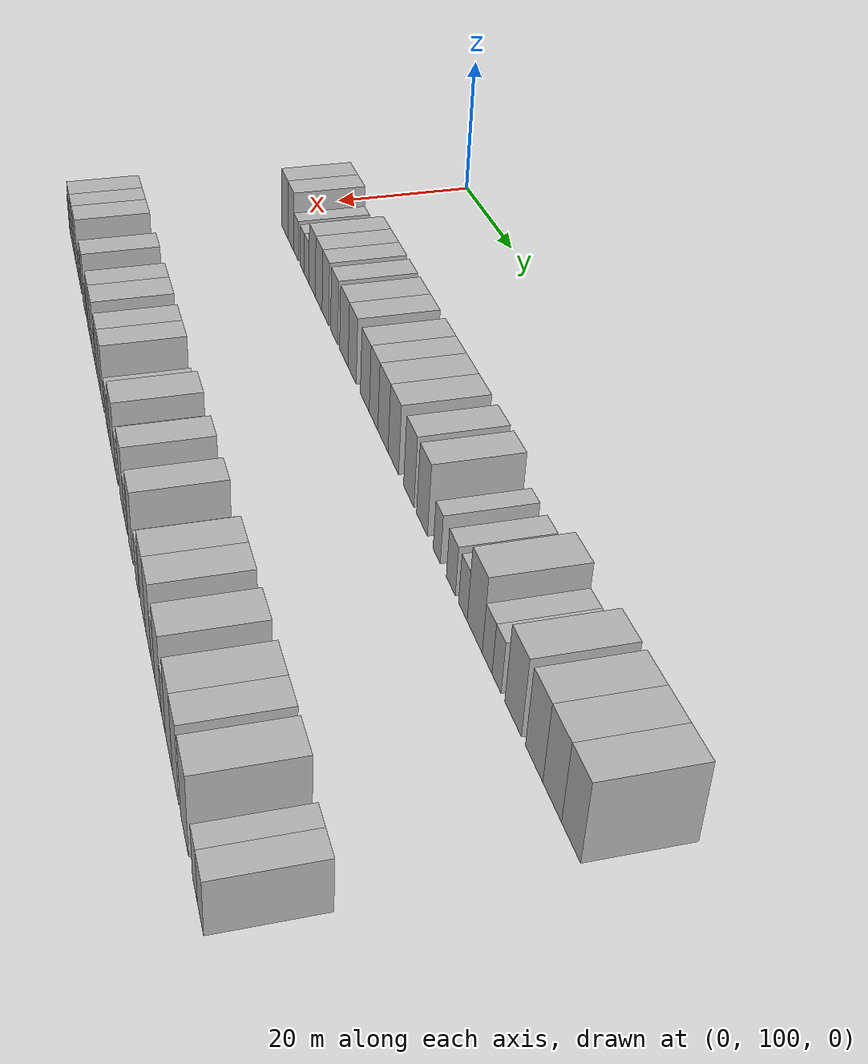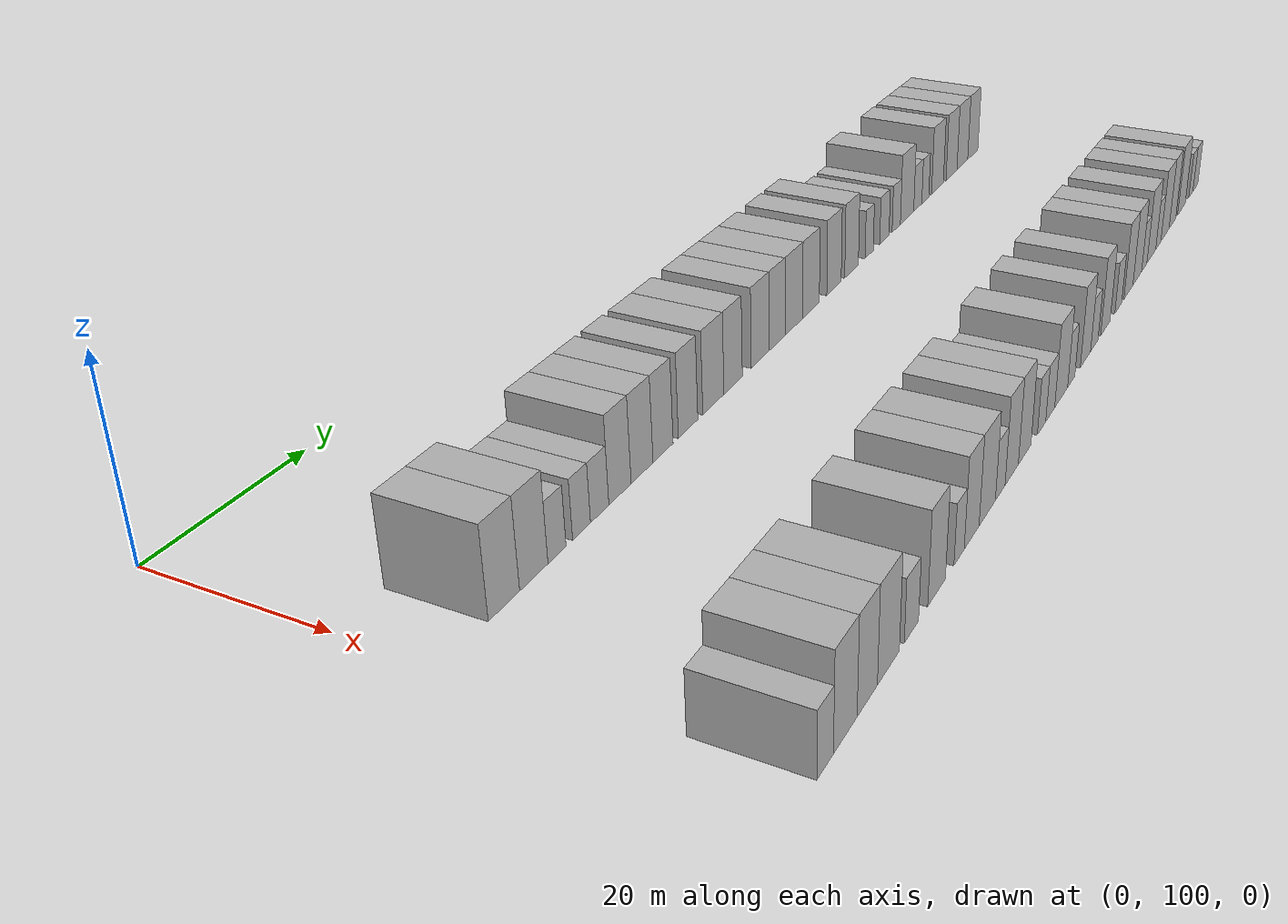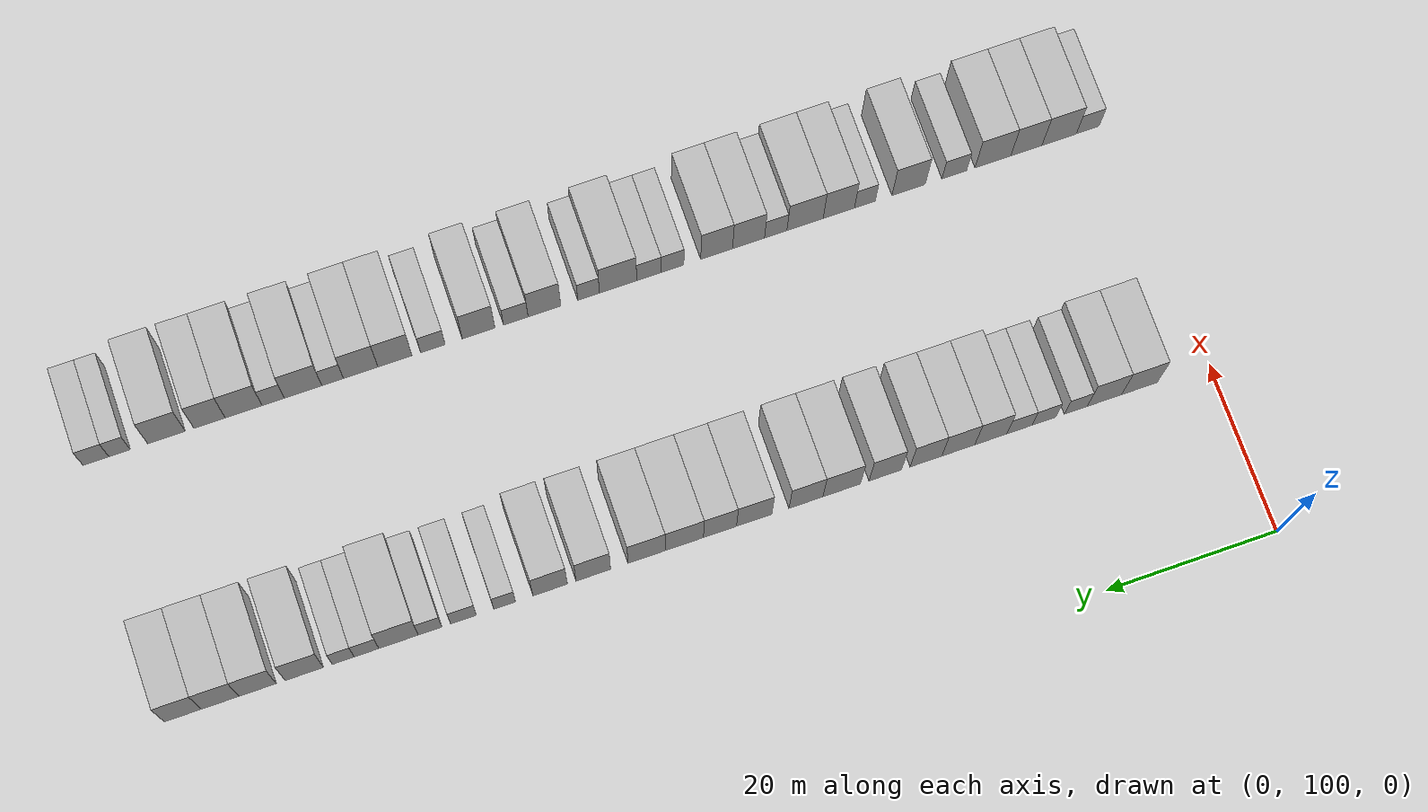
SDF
<sdf version="1.6">
 <world name="default">
  <model name="building_89">
   <static>1</static>
   <pose>25.0000 108.3610 0 0.000000 0.000000 0.000000</pose>
   <link name="link">
    <pose>0 0 4.50 0 0 0</pose>
    <collision name="collision"><geometry><box><size>10.0000 4.2693 9.0000</size></box></geometry></collision>
    <visual name="visual">
     <cast_shadows>0</cast_shadows>
     <geometry><box><size>10.0000 4.2693 9.0000</size></box></geometry>
     <material>
      <script>
       <uri>model://HANNAS_wall/materials/scripts</uri>
       <uri>model://HANNAS_wall/materials/textures</uri>
       <name>vrc/HANNAS_wall</name>
      </script>
     </material>
    </visual>
   </link>
  </model>
  <model name="building_90">
   <static>1</static>
   <pose>25.0000 112.5277 0 0.000000 0.000000 0.000000</pose>
   <link name="link">
    <pose>0 0 4.50 0 0 0</pose>
    <collision name="collision"><geometry><box><size>10.0000 4.0642 9.0000</size></box></geometry></collision>
    <visual name="visual">
     <cast_shadows>0</cast_shadows>
     <geometry><box><size>10.0000 4.0642 9.0000</size></box></geometry>
     <material>
      <script>
       <uri>model://HANNAS_wall/materials/scripts</uri>
       <uri>model://HANNAS_wall/materials/textures</uri>
       <name>vrc/HANNAS_wall</name>
      </script>
     </material>
    </visual>
   </link>
  </model>
  <model name="building_91">
   <static>1</static>
   <pose>25.0000 115.9121 0 0.000000 0.000000 0.000000</pose>
   <link name="link">
    <pose>0 0 3.00 0 0 0</pose>
    <collision name="collision"><geometry><box><size>10.0000 2.7045 6.0000</size></box></geometry></collision>
    <visual name="visual">
     <cast_shadows>0</cast_shadows>
     <geometry><box><size>10.0000 2.7045 6.0000</size></box></geometry>
     <material>
      <script>
       <uri>model://HANNAS_wall/materials/scripts</uri>
       <uri>model://HANNAS_wall/materials/textures</uri>
       <name>vrc/HANNAS_wall</name>
      </script>
     </material>
    </visual>
   </link>
  </model>
  <model name="building_92">
   <static>1</static>
   <pose>25.0000 119.6668 0 0.000000 0.000000 0.000000</pose>
   <link name="link">
    <pose>0 0 3.00 0 0 0</pose>
    <collision name="collision"><geometry><box><size>10.0000 2.8049 6.0000</size></box></geometry></collision>
    <visual name="visual">
     <cast_shadows>0</cast_shadows>
     <geometry><box><size>10.0000 2.8049 6.0000</size></box></geometry>
     <material>
      <script>
       <uri>model://HANNAS_wall/materials/scripts</uri>
       <uri>model://HANNAS_wall/materials/textures</uri>
       <name>vrc/HANNAS_wall</name>
      </script>
     </material>
    </visual>
   </link>
  </model>
  <model name="building_93">
   <static>1</static>
   <pose>25.0000 122.5591 0 0.000000 0.000000 0.000000</pose>
   <link name="link">
    <pose>0 0 3.00 0 0 0</pose>
    <collision name="collision"><geometry><box><size>10.0000 2.9797 6.0000</size></box></geometry></collision>
    <visual name="visual">
     <cast_shadows>0</cast_shadows>
     <geometry><box><size>10.0000 2.9797 6.0000</size></box></geometry>
     <material>
      <script>
       <uri>model://HANNAS_wall/materials/scripts</uri>
       <uri>model://HANNAS_wall/materials/textures</uri>
       <name>vrc/HANNAS_wall</name>
      </script>
     </material>
    </visual>
   </link>
  </model>
  <model name="building_94">
   <static>1</static>
   <pose>25.0000 125.9368 0 0.000000 0.000000 0.000000</pose>
   <link name="link">
    <pose>0 0 4.50 0 0 0</pose>
    <collision name="collision"><geometry><box><size>10.0000 3.7756 9.0000</size></box></geometry></collision>
    <visual name="visual">
     <cast_shadows>0</cast_shadows>
     <geometry><box><size>10.0000 3.7756 9.0000</size></box></geometry>
     <material>
      <script>
       <uri>model://HANNAS_wall/materials/scripts</uri>
       <uri>model://HANNAS_wall/materials/textures</uri>
       <name>vrc/HANNAS_wall</name>
      </script>
     </material>
    </visual>
   </link>
  </model>
  <model name="building_95">
   <static>1</static>
   <pose>25.0000 129.7672 0 0.000000 0.000000 0.000000</pose>
   <link name="link">
    <pose>0 0 4.50 0 0 0</pose>
    <collision name="collision"><geometry><box><size>10.0000 3.8853 9.0000</size></box></geometry></collision>
    <visual name="visual">
     <cast_shadows>0</cast_shadows>
     <geometry><box><size>10.0000 3.8853 9.0000</size></box></geometry>
     <material>
      <script>
       <uri>model://HANNAS_wall/materials/scripts</uri>
       <uri>model://HANNAS_wall/materials/textures</uri>
       <name>vrc/HANNAS_wall</name>
      </script>
     </material>
    </visual>
   </link>
  </model>
  <model name="building_96">
   <static>1</static>
   <pose>25.0000 133.5662 0 0.000000 0.000000 0.000000</pose>
   <link name="link">
    <pose>0 0 4.50 0 0 0</pose>
    <collision name="collision"><geometry><box><size>10.0000 3.7128 9.0000</size></box></geometry></collision>
    <visual name="visual">
     <cast_shadows>0</cast_shadows>
     <geometry><box><size>10.0000 3.7128 9.0000</size></box></geometry>
     <material>
      <script>
       <uri>model://HANNAS_wall/materials/scripts</uri>
       <uri>model://HANNAS_wall/materials/textures</uri>
       <name>vrc/HANNAS_wall</name>
      </script>
     </material>
    </visual>
   </link>
  </model>
  <model name="building_97">
   <static>1</static>
   <pose>25.0000 138.3248 0 0.000000 0.000000 0.000000</pose>
   <link name="link">
    <pose>0 0 4.50 0 0 0</pose>
    <collision name="collision"><geometry><box><size>10.0000 3.8044 9.0000</size></box></geometry></collision>
    <visual name="visual">
     <cast_shadows>0</cast_shadows>
     <geometry><box><size>10.0000 3.8044 9.0000</size></box></geometry>
     <material>
      <script>
       <uri>model://HANNAS_wall/materials/scripts</uri>
       <uri>model://HANNAS_wall/materials/textures</uri>
       <name>vrc/HANNAS_wall</name>
      </script>
     </material>
    </visual>
   </link>
  </model>
  <model name="building_98">
   <static>1</static>
   <pose>25.0000 143.4161 0 0.000000 0.000000 0.000000</pose>
   <link name="link">
    <pose>0 0 4.50 0 0 0</pose>
    <collision name="collision"><geometry><box><size>10.0000 4.3781 9.0000</size></box></geometry></collision>
    <visual name="visual">
     <cast_shadows>0</cast_shadows>
     <geometry><box><size>10.0000 4.3781 9.0000</size></box></geometry>
     <material>
      <script>
       <uri>model://HANNAS_wall/materials/scripts</uri>
       <uri>model://HANNAS_wall/materials/textures</uri>
       <name>vrc/HANNAS_wall</name>
      </script>
     </material>
    </visual>
   </link>
  </model>
  <model name="building_99">
   <static>1</static>
   <pose>25.0000 147.5874 0 0.000000 0.000000 0.000000</pose>
   <link name="link">
    <pose>0 0 4.50 0 0 0</pose>
    <collision name="collision"><geometry><box><size>10.0000 3.9645 9.0000</size></box></geometry></collision>
    <visual name="visual">
     <cast_shadows>0</cast_shadows>
     <geometry><box><size>10.0000 3.9645 9.0000</size></box></geometry>
     <material>
      <script>
       <uri>model://HANNAS_wall/materials/scripts</uri>
       <uri>model://HANNAS_wall/materials/textures</uri>
       <name>vrc/HANNAS_wall</name>
      </script>
     </material>
    </visual>
   </link>
  </model>
  <model name="building_100">
   <static>1</static>
   <pose>25.0000 153.6182 0 0.000000 0.000000 0.000000</pose>
   <link name="link">
    <pose>0 0 4.50 0 0 0</pose>
    <collision name="collision"><geometry><box><size>10.0000 4.0971 9.0000</size></box></geometry></collision>
    <visual name="visual">
     <cast_shadows>0</cast_shadows>
     <geometry><box><size>10.0000 4.0971 9.0000</size></box></geometry>
     <material>
      <script>
       <uri>model://HANNAS_wall/materials/scripts</uri>
       <uri>model://HANNAS_wall/materials/textures</uri>
       <name>vrc/HANNAS_wall</name>
      </script>
     </material>
    </visual>
   </link>
  </model>
  <model name="building_101">
   <static>1</static>
   <pose>25.0000 157.5860 0 0.000000 0.000000 0.000000</pose>
   <link name="link">
    <pose>0 0 4.50 0 0 0</pose>
    <collision name="collision"><geometry><box><size>10.0000 3.8385 9.0000</size></box></geometry></collision>
    <visual name="visual">
     <cast_shadows>0</cast_shadows>
     <geometry><box><size>10.0000 3.8385 9.0000</size></box></geometry>
     <material>
      <script>
       <uri>model://HANNAS_wall/materials/scripts</uri>
       <uri>model://HANNAS_wall/materials/textures</uri>
       <name>vrc/HANNAS_wall</name>
      </script>
     </material>
    </visual>
   </link>
  </model>
  <model name="building_102">
   <static>1</static>
   <pose>25.0000 161.7162 0 0.000000 0.000000 0.000000</pose>
   <link name="link">
    <pose>0 0 4.50 0 0 0</pose>
    <collision name="collision"><geometry><box><size>10.0000 4.4219 9.0000</size></box></geometry></collision>
    <visual name="visual">
     <cast_shadows>0</cast_shadows>
     <geometry><box><size>10.0000 4.4219 9.0000</size></box></geometry>
     <material>
      <script>
       <uri>model://HANNAS_wall/materials/scripts</uri>
       <uri>model://HANNAS_wall/materials/textures</uri>
       <name>vrc/HANNAS_wall</name>
      </script>
     </material>
    </visual>
   </link>
  </model>
  <model name="building_103">
   <static>1</static>
   <pose>25.0000 166.0764 0 0.000000 0.000000 0.000000</pose>
   <link name="link">
    <pose>0 0 4.50 0 0 0</pose>
    <collision name="collision"><geometry><box><size>10.0000 4.2986 9.0000</size></box></geometry></collision>
    <visual name="visual">
     <cast_shadows>0</cast_shadows>
     <geometry><box><size>10.0000 4.2986 9.0000</size></box></geometry>
     <material>
      <script>
       <uri>model://HANNAS_wall/materials/scripts</uri>
       <uri>model://HANNAS_wall/materials/textures</uri>
       <name>vrc/HANNAS_wall</name>
      </script>
     </material>
    </visual>
   </link>
  </model>
  <model name="building_104">
   <static>1</static>
   <pose>25.0000 172.2100 0 0.000000 0.000000 0.000000</pose>
   <link name="link">
    <pose>0 0 4.50 0 0 0</pose>
    <collision name="collision"><geometry><box><size>10.0000 3.9687 9.0000</size></box></geometry></collision>
    <visual name="visual">
     <cast_shadows>0</cast_shadows>
     <geometry><box><size>10.0000 3.9687 9.0000</size></box></geometry>
     <material>
      <script>
       <uri>model://HANNAS_wall/materials/scripts</uri>
       <uri>model://HANNAS_wall/materials/textures</uri>
       <name>vrc/HANNAS_wall</name>
      </script>
     </material>
    </visual>
   </link>
  </model>
  <model name="building_105">
   <static>1</static>
   <pose>25.0000 177.1684 0 0.000000 0.000000 0.000000</pose>
   <link name="link">
    <pose>0 0 4.50 0 0 0</pose>
    <collision name="collision"><geometry><box><size>10.0000 3.9479 9.0000</size></box></geometry></collision>
    <visual name="visual">
     <cast_shadows>0</cast_shadows>
     <geometry><box><size>10.0000 3.9479 9.0000</size></box></geometry>
     <material>
      <script>
       <uri>model://HANNAS_wall/materials/scripts</uri>
       <uri>model://HANNAS_wall/materials/textures</uri>
       <name>vrc/HANNAS_wall</name>
      </script>
     </material>
    </visual>
   </link>
  </model>
  <model name="building_106">
   <static>1</static>
   <pose>25.0000 182.3829 0 0.000000 0.000000 0.000000</pose>
   <link name="link">
    <pose>0 0 3.00 0 0 0</pose>
    <collision name="collision"><geometry><box><size>10.0000 2.4812 6.0000</size></box></geometry></collision>
    <visual name="visual">
     <cast_shadows>0</cast_shadows>
     <geometry><box><size>10.0000 2.4812 6.0000</size></box></geometry>
     <material>
      <script>
       <uri>model://HANNAS_wall/materials/scripts</uri>
       <uri>model://HANNAS_wall/materials/textures</uri>
       <name>vrc/HANNAS_wall</name>
      </script>
     </material>
    </visual>
   </link>
  </model>
  <model name="building_107">
   <static>1</static>
   <pose>25.0000 187.0896 0 0.000000 0.000000 0.000000</pose>
   <link name="link">
    <pose>0 0 3.00 0 0 0</pose>
    <collision name="collision"><geometry><box><size>10.0000 2.9322 6.0000</size></box></geometry></collision>
    <visual name="visual">
     <cast_shadows>0</cast_shadows>
     <geometry><box><size>10.0000 2.9322 6.0000</size></box></geometry>
     <material>
      <script>
       <uri>model://HANNAS_wall/materials/scripts</uri>
       <uri>model://HANNAS_wall/materials/textures</uri>
       <name>vrc/HANNAS_wall</name>
      </script>
     </material>
    </visual>
   </link>
  </model>
  <model name="building_108">
   <static>1</static>
   <pose>25.0000 190.9018 0 0.000000 0.000000 0.000000</pose>
   <link name="link">
    <pose>0 0 3.00 0 0 0</pose>
    <collision name="collision"><geometry><box><size>10.0000 2.6922 6.0000</size></box></geometry></collision>
    <visual name="visual">
     <cast_shadows>0</cast_shadows>
     <geometry><box><size>10.0000 2.6922 6.0000</size></box></geometry>
     <material>
      <script>
       <uri>model://HANNAS_wall/materials/scripts</uri>
       <uri>model://HANNAS_wall/materials/textures</uri>
       <name>vrc/HANNAS_wall</name>
      </script>
     </material>
    </visual>
   </link>
  </model>
  <model name="building_109">
   <static>1</static>
   <pose>25.0000 194.4925 0 0.000000 0.000000 0.000000</pose>
   <link name="link">
    <pose>0 0 4.50 0 0 0</pose>
    <collision name="collision"><geometry><box><size>10.0000 4.4891 9.0000</size></box></geometry></collision>
    <visual name="visual">
     <cast_shadows>0</cast_shadows>
     <geometry><box><size>10.0000 4.4891 9.0000</size></box></geometry>
     <material>
      <script>
       <uri>model://HANNAS_wall/materials/scripts</uri>
       <uri>model://HANNAS_wall/materials/textures</uri>
       <name>vrc/HANNAS_wall</name>
      </script>
     </material>
    </visual>
   </link>
  </model>
  <model name="building_110">
   <static>1</static>
   <pose>25.0000 198.1371 0 0.000000 0.000000 0.000000</pose>
   <link name="link">
    <pose>0 0 3.00 0 0 0</pose>
    <collision name="collision"><geometry><box><size>10.0000 2.8001 6.0000</size></box></geometry></collision>
    <visual name="visual">
     <cast_shadows>0</cast_shadows>
     <geometry><box><size>10.0000 2.8001 6.0000</size></box></geometry>
     <material>
      <script>
       <uri>model://HANNAS_wall/materials/scripts</uri>
       <uri>model://HANNAS_wall/materials/textures</uri>
       <name>vrc/HANNAS_wall</name>
      </script>
     </material>
    </visual>
   </link>
  </model>
  <model name="building_111">
   <static>1</static>
   <pose>25.0000 200.7813 0 0.000000 0.000000 0.000000</pose>
   <link name="link">
    <pose>0 0 3.00 0 0 0</pose>
    <collision name="collision"><geometry><box><size>10.0000 2.4885 6.0000</size></box></geometry></collision>
    <visual name="visual">
     <cast_shadows>0</cast_shadows>
     <geometry><box><size>10.0000 2.4885 6.0000</size></box></geometry>
     <material>
      <script>
       <uri>model://HANNAS_wall/materials/scripts</uri>
       <uri>model://HANNAS_wall/materials/textures</uri>
       <name>vrc/HANNAS_wall</name>
      </script>
     </material>
    </visual>
   </link>
  </model>
  <model name="building_112">
   <static>1</static>
   <pose>25.0000 205.1947 0 0.000000 0.000000 0.000000</pose>
   <link name="link">
    <pose>0 0 4.50 0 0 0</pose>
    <collision name="collision"><geometry><box><size>10.0000 4.3384 9.0000</size></box></geometry></collision>
    <visual name="visual">
     <cast_shadows>0</cast_shadows>
     <geometry><box><size>10.0000 4.3384 9.0000</size></box></geometry>
     <material>
      <script>
       <uri>model://HANNAS_wall/materials/scripts</uri>
       <uri>model://HANNAS_wall/materials/textures</uri>
       <name>vrc/HANNAS_wall</name>
      </script>
     </material>
    </visual>
   </link>
  </model>
  <model name="building_113">
   <static>1</static>
   <pose>25.0000 210.4686 0 0.000000 0.000000 0.000000</pose>
   <link name="link">
    <pose>0 0 4.50 0 0 0</pose>
    <collision name="collision"><geometry><box><size>10.0000 4.2093 9.0000</size></box></geometry></collision>
    <visual name="visual">
     <cast_shadows>0</cast_shadows>
     <geometry><box><size>10.0000 4.2093 9.0000</size></box></geometry>
     <material>
      <script>
       <uri>model://HANNAS_wall/materials/scripts</uri>
       <uri>model://HANNAS_wall/materials/textures</uri>
       <name>vrc/HANNAS_wall</name>
      </script>
     </material>
    </visual>
   </link>
  </model>
  <model name="building_114">
   <static>1</static>
   <pose>25.0000 214.7107 0 0.000000 0.000000 0.000000</pose>
   <link name="link">
    <pose>0 0 4.50 0 0 0</pose>
    <collision name="collision"><geometry><box><size>10.0000 4.2750 9.0000</size></box></geometry></collision>
    <visual name="visual">
     <cast_shadows>0</cast_shadows>
     <geometry><box><size>10.0000 4.2750 9.0000</size></box></geometry>
     <material>
      <script>
       <uri>model://HANNAS_wall/materials/scripts</uri>
       <uri>model://HANNAS_wall/materials/textures</uri>
       <name>vrc/HANNAS_wall</name>
      </script>
     </material>
    </visual>
   </link>
  </model>
  <model name="building_115">
   <static>1</static>
   <pose>25.0000 218.9182 0 0.000000 0.000000 0.000000</pose>
   <link name="link">
    <pose>0 0 4.50 0 0 0</pose>
    <collision name="collision"><geometry><box><size>10.0000 4.1399 9.0000</size></box></geometry></collision>
    <visual name="visual">
     <cast_shadows>0</cast_shadows>
     <geometry><box><size>10.0000 4.1399 9.0000</size></box></geometry>
     <material>
      <script>
       <uri>model://HANNAS_wall/materials/scripts</uri>
       <uri>model://HANNAS_wall/materials/textures</uri>
       <name>vrc/HANNAS_wall</name>
      </script>
     </material>
    </visual>
   </link>
  </model>
  <model name="building_198">
   <static>1</static>
   <pose>55.0000 102.8929 0 0.000000 0.000000 0.000000</pose>
   <link name="link">
    <pose>0 0 3.00 0 0 0</pose>
    <collision name="collision"><geometry><box><size>10.0000 2.7495 6.0000</size></box></geometry></collision>
    <visual name="visual">
     <cast_shadows>0</cast_shadows>
     <geometry><box><size>10.0000 2.7495 6.0000</size></box></geometry>
     <material>
      <script>
       <uri>model://HANNAS_wall/materials/scripts</uri>
       <uri>model://HANNAS_wall/materials/textures</uri>
       <name>vrc/HANNAS_wall</name>
      </script>
     </material>
    </visual>
   </link>
  </model>
  <model name="building_199">
   <static>1</static>
   <pose>55.0000 106.3410 0 0.000000 0.000000 0.000000</pose>
   <link name="link">
    <pose>0 0 4.50 0 0 0</pose>
    <collision name="collision"><geometry><box><size>10.0000 4.1467 9.0000</size></box></geometry></collision>
    <visual name="visual">
     <cast_shadows>0</cast_shadows>
     <geometry><box><size>10.0000 4.1467 9.0000</size></box></geometry>
     <material>
      <script>
       <uri>model://HANNAS_wall/materials/scripts</uri>
       <uri>model://HANNAS_wall/materials/textures</uri>
       <name>vrc/HANNAS_wall</name>
      </script>
     </material>
    </visual>
   </link>
  </model>
  <model name="building_200">
   <static>1</static>
   <pose>55.0000 110.2976 0 0.000000 0.000000 0.000000</pose>
   <link name="link">
    <pose>0 0 4.50 0 0 0</pose>
    <collision name="collision"><geometry><box><size>10.0000 3.7666 9.0000</size></box></geometry></collision>
    <visual name="visual">
     <cast_shadows>0</cast_shadows>
     <geometry><box><size>10.0000 3.7666 9.0000</size></box></geometry>
     <material>
      <script>
       <uri>model://HANNAS_wall/materials/scripts</uri>
       <uri>model://HANNAS_wall/materials/textures</uri>
       <name>vrc/HANNAS_wall</name>
      </script>
     </material>
    </visual>
   </link>
  </model>
  <model name="building_201">
   <static>1</static>
   <pose>55.0000 114.3428 0 0.000000 0.000000 0.000000</pose>
   <link name="link">
    <pose>0 0 4.50 0 0 0</pose>
    <collision name="collision"><geometry><box><size>10.0000 4.3238 9.0000</size></box></geometry></collision>
    <visual name="visual">
     <cast_shadows>0</cast_shadows>
     <geometry><box><size>10.0000 4.3238 9.0000</size></box></geometry>
     <material>
      <script>
       <uri>model://HANNAS_wall/materials/scripts</uri>
       <uri>model://HANNAS_wall/materials/textures</uri>
       <name>vrc/HANNAS_wall</name>
      </script>
     </material>
    </visual>
   </link>
  </model>
  <model name="building_202">
   <static>1</static>
   <pose>55.0000 118.9981 0 0.000000 0.000000 0.000000</pose>
   <link name="link">
    <pose>0 0 3.00 0 0 0</pose>
    <collision name="collision"><geometry><box><size>10.0000 2.9869 6.0000</size></box></geometry></collision>
    <visual name="visual">
     <cast_shadows>0</cast_shadows>
     <geometry><box><size>10.0000 2.9869 6.0000</size></box></geometry>
     <material>
      <script>
       <uri>model://HANNAS_wall/materials/scripts</uri>
       <uri>model://HANNAS_wall/materials/textures</uri>
       <name>vrc/HANNAS_wall</name>
      </script>
     </material>
    </visual>
   </link>
  </model>
  <model name="building_203">
   <static>1</static>
   <pose>55.0000 124.4916 0 0.000000 0.000000 0.000000</pose>
   <link name="link">
    <pose>0 0 4.50 0 0 0</pose>
    <collision name="collision"><geometry><box><size>10.0000 4.0000 9.0000</size></box></geometry></collision>
    <visual name="visual">
     <cast_shadows>0</cast_shadows>
     <geometry><box><size>10.0000 4.0000 9.0000</size></box></geometry>
     <material>
      <script>
       <uri>model://HANNAS_wall/materials/scripts</uri>
       <uri>model://HANNAS_wall/materials/textures</uri>
       <name>vrc/HANNAS_wall</name>
      </script>
     </material>
    </visual>
   </link>
  </model>
  <model name="building_204">
   <static>1</static>
   <pose>55.0000 129.7374 0 0.000000 0.000000 0.000000</pose>
   <link name="link">
    <pose>0 0 3.00 0 0 0</pose>
    <collision name="collision"><geometry><box><size>10.0000 2.4916 6.0000</size></box></geometry></collision>
    <visual name="visual">
     <cast_shadows>0</cast_shadows>
     <geometry><box><size>10.0000 2.4916 6.0000</size></box></geometry>
     <material>
      <script>
       <uri>model://HANNAS_wall/materials/scripts</uri>
       <uri>model://HANNAS_wall/materials/textures</uri>
       <name>vrc/HANNAS_wall</name>
      </script>
     </material>
    </visual>
   </link>
  </model>
  <model name="building_205">
   <static>1</static>
   <pose>55.0000 132.8518 0 0.000000 0.000000 0.000000</pose>
   <link name="link">
    <pose>0 0 4.50 0 0 0</pose>
    <collision name="collision"><geometry><box><size>10.0000 3.7372 9.0000</size></box></geometry></collision>
    <visual name="visual">
     <cast_shadows>0</cast_shadows>
     <geometry><box><size>10.0000 3.7372 9.0000</size></box></geometry>
     <material>
      <script>
       <uri>model://HANNAS_wall/materials/scripts</uri>
       <uri>model://HANNAS_wall/materials/textures</uri>
       <name>vrc/HANNAS_wall</name>
      </script>
     </material>
    </visual>
   </link>
  </model>
  <model name="building_206">
   <static>1</static>
   <pose>55.0000 136.8834 0 0.000000 0.000000 0.000000</pose>
   <link name="link">
    <pose>0 0 4.50 0 0 0</pose>
    <collision name="collision"><geometry><box><size>10.0000 4.3261 9.0000</size></box></geometry></collision>
    <visual name="visual">
     <cast_shadows>0</cast_shadows>
     <geometry><box><size>10.0000 4.3261 9.0000</size></box></geometry>
     <material>
      <script>
       <uri>model://HANNAS_wall/materials/scripts</uri>
       <uri>model://HANNAS_wall/materials/textures</uri>
       <name>vrc/HANNAS_wall</name>
      </script>
     </material>
    </visual>
   </link>
  </model>
  <model name="building_207">
   <static>1</static>
   <pose>55.0000 140.3801 0 0.000000 0.000000 0.000000</pose>
   <link name="link">
    <pose>0 0 3.00 0 0 0</pose>
    <collision name="collision"><geometry><box><size>10.0000 2.6673 6.0000</size></box></geometry></collision>
    <visual name="visual">
     <cast_shadows>0</cast_shadows>
     <geometry><box><size>10.0000 2.6673 6.0000</size></box></geometry>
     <material>
      <script>
       <uri>model://HANNAS_wall/materials/scripts</uri>
       <uri>model://HANNAS_wall/materials/textures</uri>
       <name>vrc/HANNAS_wall</name>
      </script>
     </material>
    </visual>
   </link>
  </model>
  <model name="building_208">
   <static>1</static>
   <pose>55.0000 143.6154 0 0.000000 0.000000 0.000000</pose>
   <link name="link">
    <pose>0 0 4.50 0 0 0</pose>
    <collision name="collision"><geometry><box><size>10.0000 3.8032 9.0000</size></box></geometry></collision>
    <visual name="visual">
     <cast_shadows>0</cast_shadows>
     <geometry><box><size>10.0000 3.8032 9.0000</size></box></geometry>
     <material>
      <script>
       <uri>model://HANNAS_wall/materials/scripts</uri>
       <uri>model://HANNAS_wall/materials/textures</uri>
       <name>vrc/HANNAS_wall</name>
      </script>
     </material>
    </visual>
   </link>
  </model>
  <model name="building_209">
   <static>1</static>
   <pose>55.0000 147.4070 0 0.000000 0.000000 0.000000</pose>
   <link name="link">
    <pose>0 0 4.50 0 0 0</pose>
    <collision name="collision"><geometry><box><size>10.0000 3.7798 9.0000</size></box></geometry></collision>
    <visual name="visual">
     <cast_shadows>0</cast_shadows>
     <geometry><box><size>10.0000 3.7798 9.0000</size></box></geometry>
     <material>
      <script>
       <uri>model://HANNAS_wall/materials/scripts</uri>
       <uri>model://HANNAS_wall/materials/textures</uri>
       <name>vrc/HANNAS_wall</name>
      </script>
     </material>
    </visual>
   </link>
  </model>
  <model name="building_210">
   <static>1</static>
   <pose>55.0000 152.6232 0 0.000000 0.000000 0.000000</pose>
   <link name="link">
    <pose>0 0 3.00 0 0 0</pose>
    <collision name="collision"><geometry><box><size>10.0000 2.6526 6.0000</size></box></geometry></collision>
    <visual name="visual">
     <cast_shadows>0</cast_shadows>
     <geometry><box><size>10.0000 2.6526 6.0000</size></box></geometry>
     <material>
      <script>
       <uri>model://HANNAS_wall/materials/scripts</uri>
       <uri>model://HANNAS_wall/materials/textures</uri>
       <name>vrc/HANNAS_wall</name>
      </script>
     </material>
    </visual>
   </link>
  </model>
  <model name="building_211">
   <static>1</static>
   <pose>55.0000 155.4101 0 0.000000 0.000000 0.000000</pose>
   <link name="link">
    <pose>0 0 3.00 0 0 0</pose>
    <collision name="collision"><geometry><box><size>10.0000 2.9212 6.0000</size></box></geometry></collision>
    <visual name="visual">
     <cast_shadows>0</cast_shadows>
     <geometry><box><size>10.0000 2.9212 6.0000</size></box></geometry>
     <material>
      <script>
       <uri>model://HANNAS_wall/materials/scripts</uri>
       <uri>model://HANNAS_wall/materials/textures</uri>
       <name>vrc/HANNAS_wall</name>
      </script>
     </material>
    </visual>
   </link>
  </model>
  <model name="building_212">
   <static>1</static>
   <pose>55.0000 159.0702 0 0.000000 0.000000 0.000000</pose>
   <link name="link">
    <pose>0 0 4.50 0 0 0</pose>
    <collision name="collision"><geometry><box><size>10.0000 4.3991 9.0000</size></box></geometry></collision>
    <visual name="visual">
     <cast_shadows>0</cast_shadows>
     <geometry><box><size>10.0000 4.3991 9.0000</size></box></geometry>
     <material>
      <script>
       <uri>model://HANNAS_wall/materials/scripts</uri>
       <uri>model://HANNAS_wall/materials/textures</uri>
       <name>vrc/HANNAS_wall</name>
      </script>
     </material>
    </visual>
   </link>
  </model>
  <model name="building_213">
   <static>1</static>
   <pose>55.0000 162.5461 0 0.000000 0.000000 0.000000</pose>
   <link name="link">
    <pose>0 0 3.00 0 0 0</pose>
    <collision name="collision"><geometry><box><size>10.0000 2.5526 6.0000</size></box></geometry></collision>
    <visual name="visual">
     <cast_shadows>0</cast_shadows>
     <geometry><box><size>10.0000 2.5526 6.0000</size></box></geometry>
     <material>
      <script>
       <uri>model://HANNAS_wall/materials/scripts</uri>
       <uri>model://HANNAS_wall/materials/textures</uri>
       <name>vrc/HANNAS_wall</name>
      </script>
     </material>
    </visual>
   </link>
  </model>
  <model name="building_214">
   <static>1</static>
   <pose>55.0000 167.7398 0 0.000000 0.000000 0.000000</pose>
   <link name="link">
    <pose>0 0 4.50 0 0 0</pose>
    <collision name="collision"><geometry><box><size>10.0000 3.8348 9.0000</size></box></geometry></collision>
    <visual name="visual">
     <cast_shadows>0</cast_shadows>
     <geometry><box><size>10.0000 3.8348 9.0000</size></box></geometry>
     <material>
      <script>
       <uri>model://HANNAS_wall/materials/scripts</uri>
       <uri>model://HANNAS_wall/materials/textures</uri>
       <name>vrc/HANNAS_wall</name>
      </script>
     </material>
    </visual>
   </link>
  </model>
  <model name="building_215">
   <static>1</static>
   <pose>55.0000 171.0972 0 0.000000 0.000000 0.000000</pose>
   <link name="link">
    <pose>0 0 3.00 0 0 0</pose>
    <collision name="collision"><geometry><box><size>10.0000 2.8800 6.0000</size></box></geometry></collision>
    <visual name="visual">
     <cast_shadows>0</cast_shadows>
     <geometry><box><size>10.0000 2.8800 6.0000</size></box></geometry>
     <material>
      <script>
       <uri>model://HANNAS_wall/materials/scripts</uri>
       <uri>model://HANNAS_wall/materials/textures</uri>
       <name>vrc/HANNAS_wall</name>
      </script>
     </material>
    </visual>
   </link>
  </model>
  <model name="building_216">
   <static>1</static>
   <pose>55.0000 175.4564 0 0.000000 0.000000 0.000000</pose>
   <link name="link">
    <pose>0 0 4.50 0 0 0</pose>
    <collision name="collision"><geometry><box><size>10.0000 3.8384 9.0000</size></box></geometry></collision>
    <visual name="visual">
     <cast_shadows>0</cast_shadows>
     <geometry><box><size>10.0000 3.8384 9.0000</size></box></geometry>
     <material>
      <script>
       <uri>model://HANNAS_wall/materials/scripts</uri>
       <uri>model://HANNAS_wall/materials/textures</uri>
       <name>vrc/HANNAS_wall</name>
      </script>
     </material>
    </visual>
   </link>
  </model>
  <model name="building_217">
   <static>1</static>
   <pose>55.0000 180.8092 0 0.000000 0.000000 0.000000</pose>
   <link name="link">
    <pose>0 0 3.00 0 0 0</pose>
    <collision name="collision"><geometry><box><size>10.0000 2.8673 6.0000</size></box></geometry></collision>
    <visual name="visual">
     <cast_shadows>0</cast_shadows>
     <geometry><box><size>10.0000 2.8673 6.0000</size></box></geometry>
     <material>
      <script>
       <uri>model://HANNAS_wall/materials/scripts</uri>
       <uri>model://HANNAS_wall/materials/textures</uri>
       <name>vrc/HANNAS_wall</name>
      </script>
     </material>
    </visual>
   </link>
  </model>
  <model name="building_218">
   <static>1</static>
   <pose>55.0000 185.2301 0 0.000000 0.000000 0.000000</pose>
   <link name="link">
    <pose>0 0 4.50 0 0 0</pose>
    <collision name="collision"><geometry><box><size>10.0000 3.9743 9.0000</size></box></geometry></collision>
    <visual name="visual">
     <cast_shadows>0</cast_shadows>
     <geometry><box><size>10.0000 3.9743 9.0000</size></box></geometry>
     <material>
      <script>
       <uri>model://HANNAS_wall/materials/scripts</uri>
       <uri>model://HANNAS_wall/materials/textures</uri>
       <name>vrc/HANNAS_wall</name>
      </script>
     </material>
    </visual>
   </link>
  </model>
  <model name="building_219">
   <static>1</static>
   <pose>55.0000 189.2194 0 0.000000 0.000000 0.000000</pose>
   <link name="link">
    <pose>0 0 4.50 0 0 0</pose>
    <collision name="collision"><geometry><box><size>10.0000 4.0044 9.0000</size></box></geometry></collision>
    <visual name="visual">
     <cast_shadows>0</cast_shadows>
     <geometry><box><size>10.0000 4.0044 9.0000</size></box></geometry>
     <material>
      <script>
       <uri>model://HANNAS_wall/materials/scripts</uri>
       <uri>model://HANNAS_wall/materials/textures</uri>
       <name>vrc/HANNAS_wall</name>
      </script>
     </material>
    </visual>
   </link>
  </model>
  <model name="building_220">
   <static>1</static>
   <pose>55.0000 192.4789 0 0.000000 0.000000 0.000000</pose>
   <link name="link">
    <pose>0 0 3.00 0 0 0</pose>
    <collision name="collision"><geometry><box><size>10.0000 2.5147 6.0000</size></box></geometry></collision>
    <visual name="visual">
     <cast_shadows>0</cast_shadows>
     <geometry><box><size>10.0000 2.5147 6.0000</size></box></geometry>
     <material>
      <script>
       <uri>model://HANNAS_wall/materials/scripts</uri>
       <uri>model://HANNAS_wall/materials/textures</uri>
       <name>vrc/HANNAS_wall</name>
      </script>
     </material>
    </visual>
   </link>
  </model>
  <model name="building_221">
   <static>1</static>
   <pose>55.0000 195.9024 0 0.000000 0.000000 0.000000</pose>
   <link name="link">
    <pose>0 0 4.50 0 0 0</pose>
    <collision name="collision"><geometry><box><size>10.0000 4.3323 9.0000</size></box></geometry></collision>
    <visual name="visual">
     <cast_shadows>0</cast_shadows>
     <geometry><box><size>10.0000 4.3323 9.0000</size></box></geometry>
     <material>
      <script>
       <uri>model://HANNAS_wall/materials/scripts</uri>
       <uri>model://HANNAS_wall/materials/textures</uri>
       <name>vrc/HANNAS_wall</name>
      </script>
     </material>
    </visual>
   </link>
  </model>
  <model name="building_222">
   <static>1</static>
   <pose>55.0000 199.3552 0 0.000000 0.000000 0.000000</pose>
   <link name="link">
    <pose>0 0 3.00 0 0 0</pose>
    <collision name="collision"><geometry><box><size>10.0000 2.5733 6.0000</size></box></geometry></collision>
    <visual name="visual">
     <cast_shadows>0</cast_shadows>
     <geometry><box><size>10.0000 2.5733 6.0000</size></box></geometry>
     <material>
      <script>
       <uri>model://HANNAS_wall/materials/scripts</uri>
       <uri>model://HANNAS_wall/materials/textures</uri>
       <name>vrc/HANNAS_wall</name>
      </script>
     </material>
    </visual>
   </link>
  </model>
  <model name="building_223">
   <static>1</static>
   <pose>55.0000 202.7722 0 0.000000 0.000000 0.000000</pose>
   <link name="link">
    <pose>0 0 4.50 0 0 0</pose>
    <collision name="collision"><geometry><box><size>10.0000 4.2606 9.0000</size></box></geometry></collision>
    <visual name="visual">
     <cast_shadows>0</cast_shadows>
     <geometry><box><size>10.0000 4.2606 9.0000</size></box></geometry>
     <material>
      <script>
       <uri>model://HANNAS_wall/materials/scripts</uri>
       <uri>model://HANNAS_wall/materials/textures</uri>
       <name>vrc/HANNAS_wall</name>
      </script>
     </material>
    </visual>
   </link>
  </model>
  <model name="building_224">
   <static>1</static>
   <pose>55.0000 206.7100 0 0.000000 0.000000 0.000000</pose>
   <link name="link">
    <pose>0 0 4.50 0 0 0</pose>
    <collision name="collision"><geometry><box><size>10.0000 3.6150 9.0000</size></box></geometry></collision>
    <visual name="visual">
     <cast_shadows>0</cast_shadows>
     <geometry><box><size>10.0000 3.6150 9.0000</size></box></geometry>
     <material>
      <script>
       <uri>model://HANNAS_wall/materials/scripts</uri>
       <uri>model://HANNAS_wall/materials/textures</uri>
       <name>vrc/HANNAS_wall</name>
      </script>
     </material>
    </visual>
   </link>
  </model>
  <model name="building_225">
   <static>1</static>
   <pose>55.0000 211.6746 0 0.000000 0.000000 0.000000</pose>
   <link name="link">
    <pose>0 0 4.50 0 0 0</pose>
    <collision name="collision"><geometry><box><size>10.0000 4.3143 9.0000</size></box></geometry></collision>
    <visual name="visual">
     <cast_shadows>0</cast_shadows>
     <geometry><box><size>10.0000 4.3143 9.0000</size></box></geometry>
     <material>
      <script>
       <uri>model://HANNAS_wall/materials/scripts</uri>
       <uri>model://HANNAS_wall/materials/textures</uri>
       <name>vrc/HANNAS_wall</name>
      </script>
     </material>
    </visual>
   </link>
  </model>
  <model name="building_226">
   <static>1</static>
   <pose>55.0000 217.0582 0 0.000000 0.000000 0.000000</pose>
   <link name="link">
    <pose>0 0 3.00 0 0 0</pose>
    <collision name="collision"><geometry><box><size>10.0000 2.4530 6.0000</size></box></geometry></collision>
    <visual name="visual">
     <cast_shadows>0</cast_shadows>
     <geometry><box><size>10.0000 2.4530 6.0000</size></box></geometry>
     <material>
      <script>
       <uri>model://HANNAS_wall/materials/scripts</uri>
       <uri>model://HANNAS_wall/materials/textures</uri>
       <name>vrc/HANNAS_wall</name>
      </script>
     </material>
    </visual>
   </link>
  </model>
  <model name="building_227">
   <static>1</static>
   <pose>55.0000 219.7667 0 0.000000 0.000000 0.000000</pose>
   <link name="link">
    <pose>0 0 3.00 0 0 0</pose>
    <collision name="collision"><geometry><box><size>10.0000 2.9639 6.0000</size></box></geometry></collision>
    <visual name="visual">
     <cast_shadows>0</cast_shadows>
     <geometry><box><size>10.0000 2.9639 6.0000</size></box></geometry>
     <material>
      <script>
       <uri>model://HANNAS_wall/materials/scripts</uri>
       <uri>model://HANNAS_wall/materials/textures</uri>
       <name>vrc/HANNAS_wall</name>
      </script>
     </material>
    </visual>
   </link>
  </model>
 </world>
</sdf>
